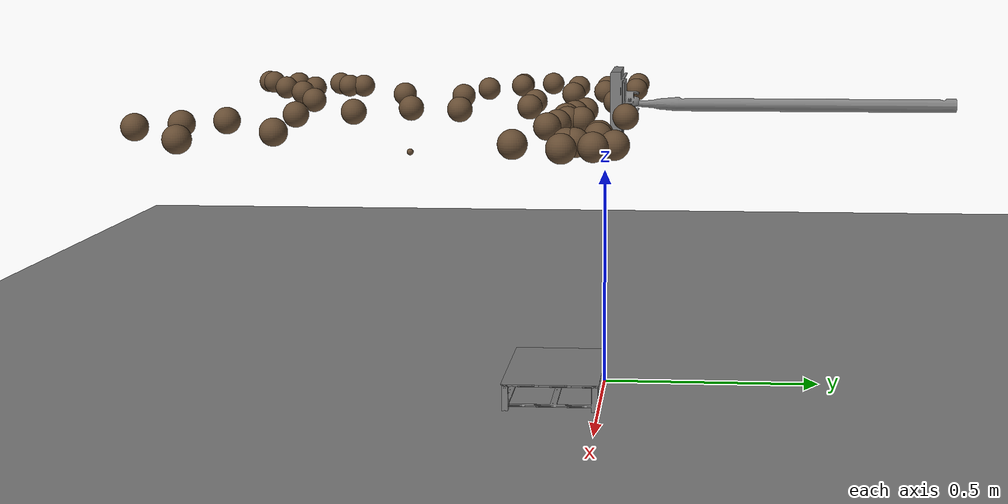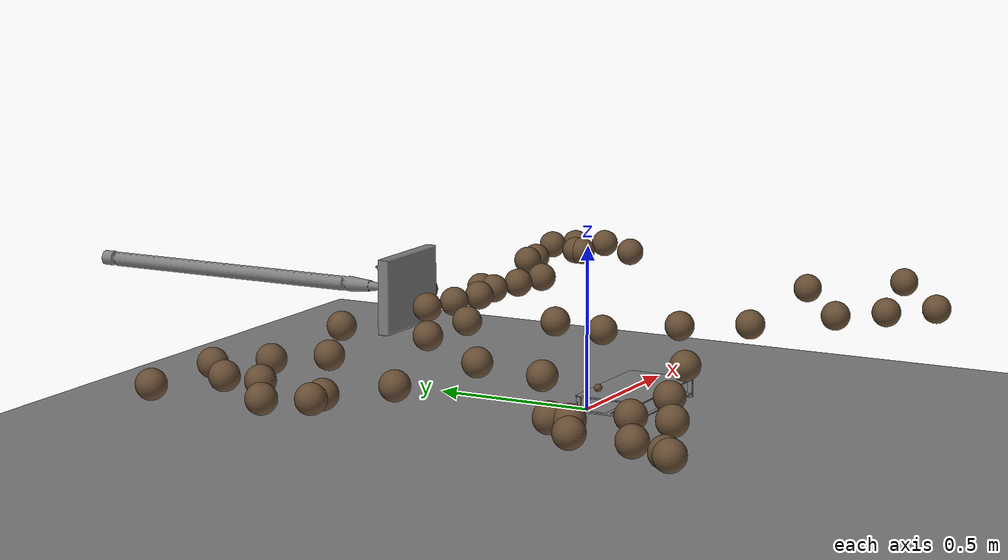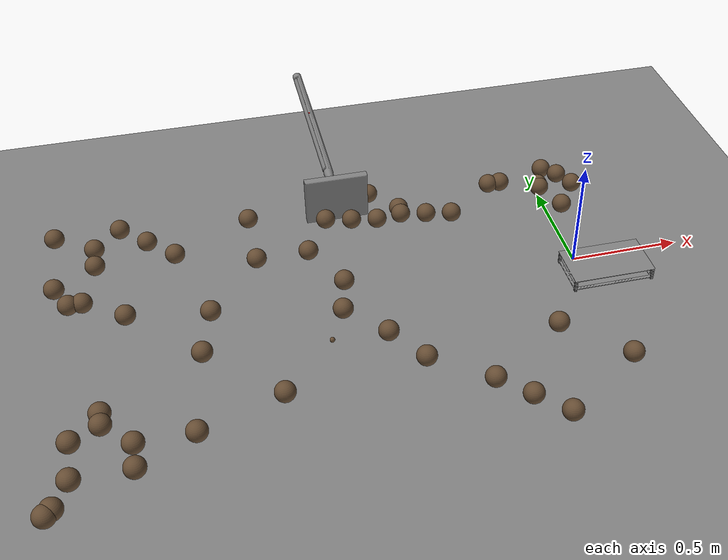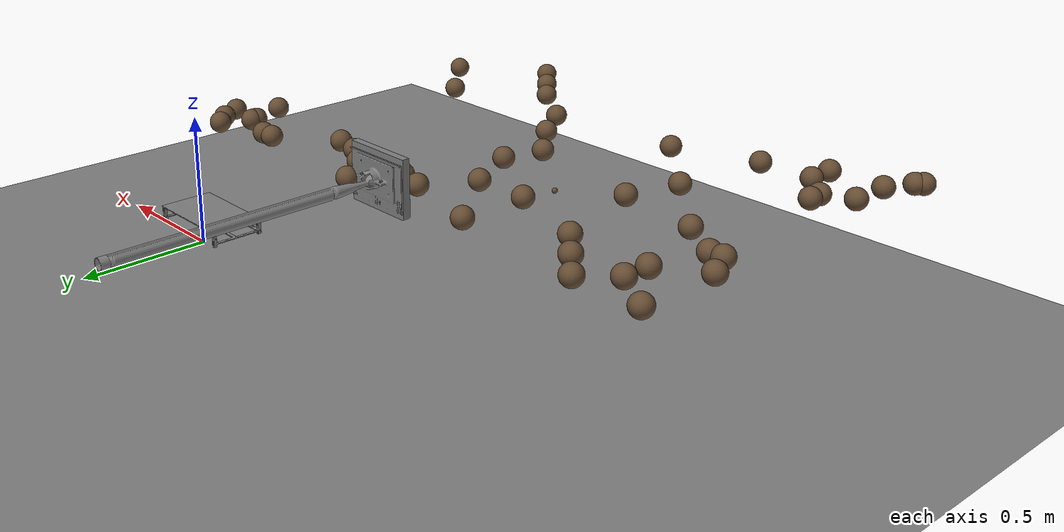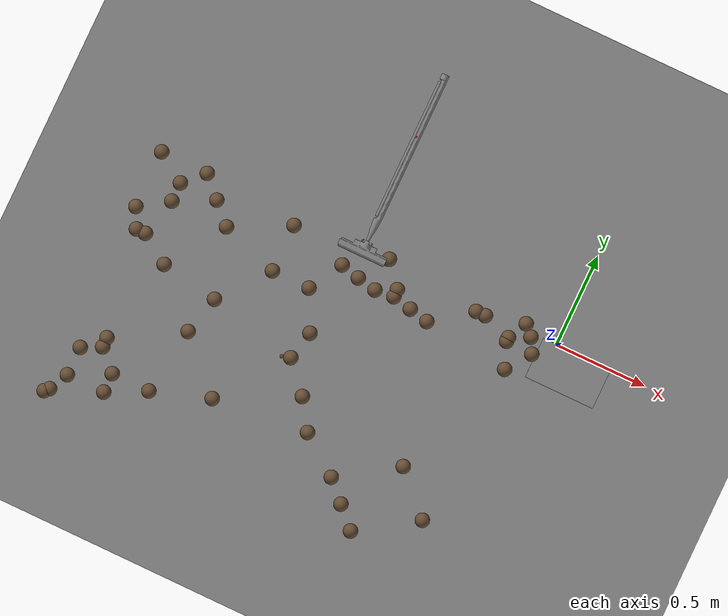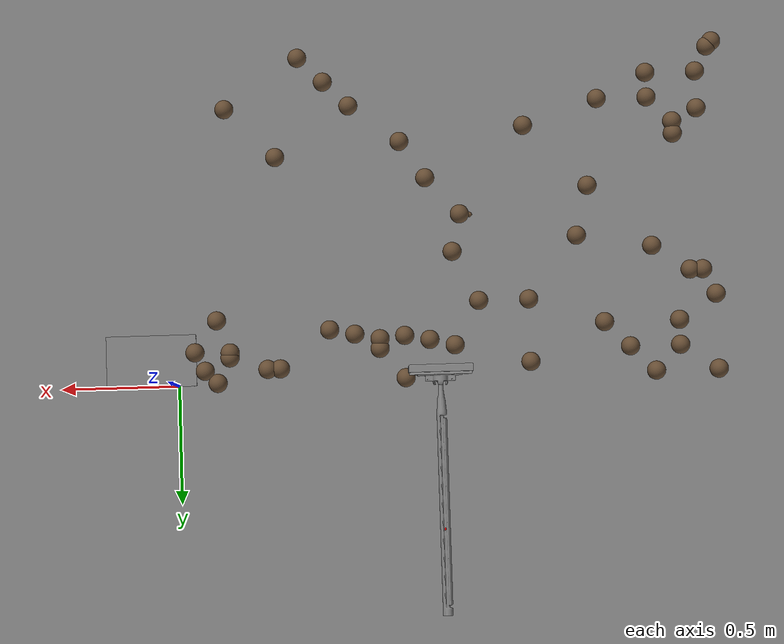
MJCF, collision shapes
<?xml version="1.0" encoding="UTF-8"?>
<mujoco model="ur5e_with_mop_and_dust">
  <compiler angle="radian" meshdir="assets" autolimits="true"/>
  <option integrator="implicitfast" timestep="0.01" viscosity="0.01"/>

  <!-- ================= DEFAULT SETTINGS ================= -->
  <default>
    <default class="ur5e">
      <default class="visual">
        <geom type="mesh" contype="0" conaffinity="0" group="2"/>
      </default>
      <default class="collision">
        <geom type="capsule" group="3"/>
        <default class="eef_collision">
          <geom type="cylinder"/>
        </default>
      </default>

      <joint axis="0 1 0" range="-6.28319 6.28319"/>
      <default class="joint_limited">
        <joint range="-3.1415 3.1415"/>
      </default>
      <default class="position">
        <position ctrlrange="-6.2831 6.2831" kp="2000" kv="100" forcerange="-150 150"/>
        <default class="position_limited">
          <position ctrlrange="-3.1415 3.1415"/>
        </default>
        <default class="position_small">
          <position kp="500" kv="25" forcerange="-28 28"/>
        </default>
      </default>
    </default>
    <default class="dust">
      <geom type="sphere" size="0.01" density="800" friction="1.5 0.05 0.01" condim="3"
            solref="0.01 0.8" solimp="0.9 0.95 0.001"/>
    </default>
  </default>

  <!-- ================= MATERIALS + MESHES ================= -->
  <asset>
    <material name="black" rgba="0.033 0.033 0.033 1"/>
    <material name="jointgray" rgba="0.278 0.278 0.278 1"/>
    <material name="linkgray" rgba="0.82 0.82 0.82 1"/>
    <material name="urblue" rgba="0.49 0.678 0.8 1"/>
    <material name="table_material" rgba="0.6 0.4 0.2 1"/>
    <material name="dust_material" rgba="0.4 0.3 0.2 1"/>

    <mesh file="base_0.obj"/>
    <mesh file="base_1.obj"/>
    <mesh file="shoulder_0.obj"/>
    <mesh file="shoulder_1.obj"/>
    <mesh file="shoulder_2.obj"/>
    <mesh file="upperarm_0.obj"/>
    <mesh file="upperarm_1.obj"/>
    <mesh file="upperarm_2.obj"/>
    <mesh file="upperarm_3.obj"/>
    <mesh file="forearm_0.obj"/>
    <mesh file="forearm_1.obj"/>
    <mesh file="forearm_2.obj"/>
    <mesh file="forearm_3.obj"/>
    <mesh file="wrist1_0.obj"/>
    <mesh file="wrist1_1.obj"/>
    <mesh file="wrist1_2.obj"/>
    <mesh file="wrist2_0.obj"/>
    <mesh file="wrist2_1.obj"/>
    <mesh file="wrist2_2.obj"/>
    <mesh file="wrist3.obj"/>

    <mesh file="test.stl" scale="0.28 0.29 0.1" name="table"/>
    <mesh name="base_mesh" file="mop_base.obj" scale="0.002 0.002 0.002"/>
    <mesh name="handle_mesh" file="mop_handle.obj" scale="0.002 0.002 0.002"/>
    <mesh name="dust_ball_mesh" file="simple_small_ball.stl" scale="0.005 0.005 0.005"/>
  </asset>

  <!-- ================= WORLD OBJECTS ================= -->
  <worldbody>
    <geom name="ground" type="plane" size="3 3 0.1" rgba="0.5 0.5 0.5 1" pos="0 0 0"
          solref="0.02 1.0" solimp="0.9 0.95 0.001"/>

    <body name="table" pos="0.3 0 0">
      <inertial mass="50" pos="0 0 0.4" diaginertia="10 10 5"/>
      <geom name="table_visual" type="mesh" mesh="table" material="table_material" class="visual"/>
      <geom name="table_collision" type="mesh" mesh="table" group="3" class="collision"
            solref="0.02 1.0" solimp="0.9 0.95 0.001"/>
    </body>

    <body name="base" pos="-0.875 -0.2 0.5" quat="1 0 0 1" childclass="ur5e">
      <inertial mass="4" pos="0 0 0" diaginertia="0.0044 0.0044 0.0072"/>
      <geom mesh="base_0" material="black" class="visual"/>
      <geom mesh="base_1" material="jointgray" class="visual"/>

      <body name="shoulder_link" pos="0 0 0.163">
        <inertial mass="3.7" pos="0 0 0" diaginertia="0.0102 0.0102 0.0066"/>
        <joint name="shoulder_pan" axis="0 0 1"/>
        <geom mesh="shoulder_0" material="urblue" class="visual"/>
        <geom mesh="shoulder_1" material="black" class="visual"/>
        <geom mesh="shoulder_2" material="jointgray" class="visual"/>

        <body name="upper_arm_link" pos="0 0.138 0" quat="1 0 1 0">
          <inertial mass="8.39" pos="0 0 0.2125" diaginertia="0.133 0.133 0.015"/>
          <joint name="shoulder_lift"/>
          <geom mesh="upperarm_0" material="linkgray" class="visual"/>
          <geom mesh="upperarm_1" material="black" class="visual"/>
          <geom mesh="upperarm_2" material="jointgray" class="visual"/>
          <geom mesh="upperarm_3" material="urblue" class="visual"/>

          <body name="forearm_link" pos="0 -0.131 0.425">
            <inertial mass="2.27" pos="0 0 0.196" diaginertia="0.031 0.031 0.004"/>
            <joint name="elbow" class="joint_limited"/>
            <geom mesh="forearm_0" material="urblue" class="visual"/>
            <geom mesh="forearm_1" material="linkgray" class="visual"/>
            <geom mesh="forearm_2" material="black" class="visual"/>
            <geom mesh="forearm_3" material="jointgray" class="visual"/>

            <body name="wrist_1_link" pos="0 0 0.392" quat="1 0 1 0">
              <inertial mass="1.219" pos="0 0.127 0" diaginertia="0.0025 0.0025 0.0021"/>
              <joint name="wrist_1"/>
              <geom mesh="wrist1_0" material="black" class="visual"/>
              <geom mesh="wrist1_1" material="urblue" class="visual"/>
              <geom mesh="wrist1_2" material="jointgray" class="visual"/>

              <body name="wrist_2_link" pos="0 0.127 0">
                <inertial mass="1.219" pos="0 0 0.1" diaginertia="0.0025 0.0025 0.0021"/>
                <joint name="wrist_2" axis="0 0 1"/>
                <geom mesh="wrist2_0" material="black" class="visual"/>
                <geom mesh="wrist2_1" material="urblue" class="visual"/>
                <geom mesh="wrist2_2" material="jointgray" class="visual"/>

                <body name="wrist_3_link" pos="0 0 0.1">
                  <inertial mass="0.188" pos="0 0.077 0" diaginertia="0.00013 0.0001 0.0001"/>
                  <joint name="wrist_3"/>
                  <geom mesh="wrist3" material="linkgray" class="visual"/>
                  <site name="ee_site" pos="0 0.08 0" size="0.01" rgba="1 0 0 1"/>

                  <body name="mop_mount" pos="0 0.08 0" quat="1 0 0 1">
                    <body name="mop_tool" pos="0 -0.6 0">
                      <inertial mass="0.5" pos="0 0 0" diaginertia="0.01 0.01 0.01"/>
                      <geom type="mesh" mesh="handle_mesh" density="500" friction="0.8 0.1 0.1"/>
                      <body name="mop_head">
                        <joint name="mop_socket" type="ball" damping="0.5" limited="false"/>
                        <inertial mass="0.2" pos="0 -0.05 -0.1" diaginertia="0.005 0.005 0.005"/>
                        <geom type="mesh" mesh="base_mesh" density="500" friction="0.8 0.1 0.1" pos="0 -0.05 -0.1"/>
                      </body>
                    </body>
                  </body>
                </body>
              </body>
            </body>
          </body>
        </body>
      </body>
    </body>

    <!-- Dust balls (stable with solver parameters) -->
    <body name="dust_1" pos="-1.2340 -0.6502 0.4">
      <freejoint/>
      <inertial mass="0.5" diaginertia="5e-5 5e-5 5e-5" pos="0 0 0"/>
      <geom name="d1" class="dust" material="dust_material"/>
    </body>
      <!-- Dust particles - stable until mop pushes them -->
    <body name="dust_111" pos="-1.2340 -0.6502 0.5">
      <freejoint/>
      <inertial mass="0.03" diaginertia="2e-5 2e-5 2e-5" pos="0 0 0"/>
      <geom name="d111" type="mesh" mesh="dust_ball_mesh" material="dust_material" class="dust"/>
    </body>

    <body name="dust_2" pos="-0.5004 -0.0503 0.5">
      <freejoint/>
      <inertial mass="0.03" diaginertia="2e-5 2e-5 2e-5" pos="0 0 0"/>
      <geom name="d2" type="mesh" mesh="dust_ball_mesh" material="dust_material" class="dust"/>
    </body>

    <body name="dust_3" pos="-2.1001 -1.0000 0.5">
      <freejoint/>
      <inertial mass="0.03" diaginertia="2e-5 2e-5 2e-5" pos="0 0 0"/>
      <geom name="d3" type="mesh" mesh="dust_ball_mesh" material="dust_material" class="dust"/>
    </body>

    <body name="dust_4" pos="-0.3000 -0.1000 0.5">
      <freejoint/>
      <inertial mass="0.03" diaginertia="2e-5 2e-5 2e-5" pos="0 0 0"/>
      <geom name="d4" type="mesh" mesh="dust_ball_mesh" material="dust_material" class="dust"/>
    </body>

    <body name="dust_5" pos="-1.8000 -0.2000 0.5">
      <freejoint/>
      <inertial mass="0.03" diaginertia="2e-5 2e-5 2e-5" pos="0 0 0"/>
      <geom name="d5" type="mesh" mesh="dust_ball_mesh" material="dust_material" class="dust"/>
    </body>

    <body name="dust_6" pos="-2.0000 -0.5000 0.5">
      <freejoint/>
      <inertial mass="0.03" diaginertia="2e-5 2e-5 2e-5" pos="0 0 0"/>
      <geom name="d6" type="mesh" mesh="dust_ball_mesh" material="dust_material" class="dust"/>
    </body>

    <body name="dust_7" pos="-0.7000 -1.2000 0.5">
      <freejoint/>
      <inertial mass="0.03" diaginertia="2e-5 2e-5 2e-5" pos="0 0 0"/>
      <geom name="d7" type="mesh" mesh="dust_ball_mesh" material="dust_material" class="dust"/>
    </body>

    <body name="dust_8" pos="-1.5000 -0.0500 0.5">
      <freejoint/>
      <inertial mass="0.03" diaginertia="2e-5 2e-5 2e-5" pos="0 0 0"/>
      <geom name="d8" type="mesh" mesh="dust_ball_mesh" material="dust_material" class="dust"/>
    </body>

    <body name="dust_9" pos="-2.2500 -0.3000 0.5">
      <freejoint/>
      <inertial mass="0.03" diaginertia="2e-5 2e-5 2e-5" pos="0 0 0"/>
      <geom name="d9" type="mesh" mesh="dust_ball_mesh" material="dust_material" class="dust"/>
    </body>

    <body name="dust_10" pos="-0.9000 -0.1200 0.5">
      <freejoint/>
      <inertial mass="0.03" diaginertia="2e-5 2e-5 2e-5" pos="0 0 0"/>
      <geom name="d10" type="mesh" mesh="dust_ball_mesh" material="dust_material" class="dust"/>
    </body>

    <body name="dust_11" pos="-1.0000 0.0000 0.5">
      <freejoint/>
      <inertial mass="0.03" diaginertia="2e-5 2e-5 2e-5" pos="0 0 0"/>
      <geom name="d11" type="mesh" mesh="dust_ball_mesh" material="dust_material" class="dust"/>
    </body>

    <body name="dust_12" pos="-2.2000 -1.0500 0.5">
      <freejoint/>
      <inertial mass="0.03" diaginertia="2e-5 2e-5 2e-5" pos="0 0 0"/>
      <geom name="d12" type="mesh" mesh="dust_ball_mesh" material="dust_material" class="dust"/>
    </body>

    <body name="dust_13" pos="-1.7500 -0.7500 0.5">
      <freejoint/>
      <inertial mass="0.03" diaginertia="2e-5 2e-5 2e-5" pos="0 0 0"/>
      <geom name="d13" type="mesh" mesh="dust_ball_mesh" material="dust_material" class="dust"/>
    </body>

    <body name="dust_14" pos="-0.2500 -0.2500 0.5">
      <freejoint/>
      <inertial mass="0.03" diaginertia="2e-5 2e-5 2e-5" pos="0 0 0"/>
      <geom name="d14" type="mesh" mesh="dust_ball_mesh" material="dust_material" class="dust"/>
    </body>

    <body name="dust_15" pos="-1.1000 -0.1500 0.5">
      <freejoint/>
      <inertial mass="0.03" diaginertia="2e-5 2e-5 2e-5" pos="0 0 0"/>
      <geom name="d15" type="mesh" mesh="dust_ball_mesh" material="dust_material" class="dust"/>
    </body>

    <body name="dust_16" pos="-2.2700 -1.3200 0.5">
      <freejoint/>
      <inertial mass="0.03" diaginertia="2e-5 2e-5 2e-5" pos="0 0 0"/>
      <geom name="d16" type="mesh" mesh="dust_ball_mesh" material="dust_material" class="dust"/>
    </body>

    <body name="dust_17" pos="-0.1608 -0.1246 0.5">
      <freejoint/>
      <inertial mass="0.03" diaginertia="2e-5 2e-5 2e-5" pos="0 0 0"/>
      <geom name="d17" type="mesh" mesh="dust_ball_mesh" material="dust_material" class="dust"/>
    </body>

    <body name="dust_18" pos="-1.5000 -1.0000 0.5">
      <freejoint/>
      <inertial mass="0.03" diaginertia="2e-5 2e-5 2e-5" pos="0 0 0"/>
      <geom name="d18" type="mesh" mesh="dust_ball_mesh" material="dust_material" class="dust"/>
    </body>

    <body name="dust_19" pos="-0.7008 -0.2003 0.5">
      <freejoint/>
      <inertial mass="0.03" diaginertia="2e-5 2e-5 2e-5" pos="0 0 0"/>
      <geom name="d19" type="mesh" mesh="dust_ball_mesh" material="dust_material" class="dust"/>
    </body>

    <body name="dust_20" pos="-2.1008 -0.9502 0.5">
      <freejoint/>
      <inertial mass="0.03" diaginertia="2e-5 2e-5 2e-5" pos="0 0 0"/>
      <geom name="d20" type="mesh" mesh="dust_ball_mesh" material="dust_material" class="dust"/>
    </body>

    <body name="dust_21" pos="-1.2000 -0.5000 0.5">
      <freejoint/>
      <inertial mass="0.03" diaginertia="2e-5 2e-5 2e-5" pos="0 0 0"/>
      <geom name="d21" type="mesh" mesh="dust_ball_mesh" material="dust_material" class="dust"/>
    </body>

    <body name="dust_22" pos="-0.4500 -0.0500 0.5">
      <freejoint/>
      <inertial mass="0.03" diaginertia="2e-5 2e-5 2e-5" pos="0 0 0"/>
      <geom name="d22" type="mesh" mesh="dust_ball_mesh" material="dust_material" class="dust"/>
    </body>

    <body name="dust_23" pos="-2.0000 -1.2000 0.5">
      <freejoint/>
      <inertial mass="0.03" diaginertia="2e-5 2e-5 2e-5" pos="0 0 0"/>
      <geom name="d23" type="mesh" mesh="dust_ball_mesh" material="dust_material" class="dust"/>
    </body>

    <body name="dust_24" pos="-0.3008 -0.1200 0.5">
      <freejoint/>
      <inertial mass="0.03" diaginertia="2e-5 2e-5 2e-5" pos="0 0 0"/>
      <geom name="d24" type="mesh" mesh="dust_ball_mesh" material="dust_material" class="dust"/>
    </body>

    <body name="dust_25" pos="-1.9000 -0.1000 0.5">
      <freejoint/>
      <inertial mass="0.03" diaginertia="2e-5 2e-5 2e-5" pos="0 0 0"/>
      <geom name="d25" type="mesh" mesh="dust_ball_mesh" material="dust_material" class="dust"/>
    </body>

    <body name="dust_26" pos="-2.2500 0.0000 0.5">
      <freejoint/>
      <inertial mass="0.03" diaginertia="2e-5 2e-5 2e-5" pos="0 0 0"/>
      <geom name="d26" type="mesh" mesh="dust_ball_mesh" material="dust_material" class="dust"/>
    </body>

    <body name="dust_27" pos="-0.8000 -1.1000 0.5">
      <freejoint/>
      <inertial mass="0.03" diaginertia="2e-5 2e-5 2e-5" pos="0 0 0"/>
      <geom name="d27" type="mesh" mesh="dust_ball_mesh" material="dust_material" class="dust"/>
    </body>

    <body name="dust_28" pos="-1.3000 -0.3000 0.5">
      <freejoint/>
      <inertial mass="0.03" diaginertia="2e-5 2e-5 2e-5" pos="0 0 0"/>
      <geom name="d28" type="mesh" mesh="dust_ball_mesh" material="dust_material" class="dust"/>
    </body>

    <body name="dust_29" pos="-2.1500 -0.4000 0.5">
      <freejoint/>
      <inertial mass="0.03" diaginertia="2e-5 2e-5 2e-5" pos="0 0 0"/>
      <geom name="d29" type="mesh" mesh="dust_ball_mesh" material="dust_material" class="dust"/>
    </body>

    <body name="dust_30" pos="-1.0000 -0.1690 0.5">
      <freejoint/>
      <inertial mass="0.03" diaginertia="2e-5 2e-5 2e-5" pos="0 0 0"/>
      <geom name="d30" type="mesh" mesh="dust_ball_mesh" material="dust_material" class="dust"/>
    </body>

    <body name="dust_31" pos="-1.1000 -0.8000 0.5">
      <freejoint/>
      <inertial mass="0.03" diaginertia="2e-5 2e-5 2e-5" pos="0 0 0"/>
      <geom name="d31" type="mesh" mesh="dust_ball_mesh" material="dust_material" class="dust"/>
    </body>

    <body name="dust_32" pos="-2.0008 -1.1000 0.5">
      <freejoint/>
      <inertial mass="0.03" diaginertia="2e-5 2e-5 2e-5" pos="0 0 0"/>
      <geom name="d32" type="mesh" mesh="dust_ball_mesh" material="dust_material" class="dust"/>
    </body>

    <body name="dust_33" pos="-0.2000 -0.0500 0.5">
      <freejoint/>
      <inertial mass="0.03" diaginertia="2e-5 2e-5 2e-5" pos="0 0 0"/>
      <geom name="d33" type="mesh" mesh="dust_ball_mesh" material="dust_material" class="dust"/>
    </body>

    <body name="dust_34" pos="-1.7000 -0.5500 0.5">
      <freejoint/>
      <inertial mass="0.03" diaginertia="2e-5 2e-5 2e-5" pos="0 0 0"/>
      <geom name="d34" type="mesh" mesh="dust_ball_mesh" material="dust_material" class="dust"/>
    </body>

    <body name="dust_35" pos="-2.1000 -0.2000 0.5">
      <freejoint/>
      <inertial mass="0.03" diaginertia="2e-5 2e-5 2e-5" pos="0 0 0"/>
      <geom name="d35" type="mesh" mesh="dust_ball_mesh" material="dust_material" class="dust"/>
    </body>

    <body name="dust_36" pos="-0.6000 -1.3000 0.5">
      <freejoint/>
      <inertial mass="0.03" diaginertia="2e-5 2e-5 2e-5" pos="0 0 0"/>
      <geom name="d36" type="mesh" mesh="dust_ball_mesh" material="dust_material" class="dust"/>
    </body>

    <body name="dust_37" pos="-2.2000 -1.2000 0.5">
      <freejoint/>
      <inertial mass="0.03" diaginertia="2e-5 2e-5 2e-5" pos="0 0 0"/>
      <geom name="d37" type="mesh" mesh="dust_ball_mesh" material="dust_material" class="dust"/>
    </body>

    <body name="dust_38" pos="-2.1000 -0.1000 0.5">
      <freejoint/>
      <inertial mass="0.03" diaginertia="2e-5 2e-5 2e-5" pos="0 0 0"/>
      <geom name="d38" type="mesh" mesh="dust_ball_mesh" material="dust_material" class="dust"/>
    </body>

    <body name="dust_39" pos="-1.5000 -0.3000 0.5">
      <freejoint/>
      <inertial mass="0.03" diaginertia="2e-5 2e-5 2e-5" pos="0 0 0"/>
      <geom name="d39" type="mesh" mesh="dust_ball_mesh" material="dust_material" class="dust"/>
    </body>

    <body name="dust_40" pos="-0.9008 -0.1590 0.5">
      <freejoint/>
      <inertial mass="0.03" diaginertia="2e-5 2e-5 2e-5" pos="0 0 0"/>
      <geom name="d40" type="mesh" mesh="dust_ball_mesh" material="dust_material" class="dust"/>
    </body>

    <body name="dust_41" pos="-2.2500 -1.3000 0.5">
      <freejoint/>
      <inertial mass="0.03" diaginertia="2e-5 2e-5 2e-5" pos="0 0 0"/>
      <geom name="d41" type="mesh" mesh="dust_ball_mesh" material="dust_material" class="dust"/>
    </body>

    <body name="dust_42" pos="-1.0008 -0.9500 0.5">
      <freejoint/>
      <inertial mass="0.03" diaginertia="2e-5 2e-5 2e-5" pos="0 0 0"/>
      <geom name="d42" type="mesh" mesh="dust_ball_mesh" material="dust_material" class="dust"/>
    </body>

    <body name="dust_43" pos="-0.3008 -1.1000 0.5">
      <freejoint/>
      <inertial mass="0.03" diaginertia="2e-5 2e-5 2e-5" pos="0 0 0"/>
      <geom name="d43" type="mesh" mesh="dust_ball_mesh" material="dust_material" class="dust"/>
    </body>

    <body name="dust_44" pos="-2.0000 0.0000 0.5">
      <freejoint/>
      <inertial mass="0.03" diaginertia="2e-5 2e-5 2e-5" pos="0 0 0"/>
      <geom name="d44" type="mesh" mesh="dust_ball_mesh" material="dust_material" class="dust"/>
    </body>

    <body name="dust_45" pos="-1.2000 -0.1255 0.5">
      <freejoint/>
      <inertial mass="0.03" diaginertia="2e-5 2e-5 2e-5" pos="0 0 0"/>
      <geom name="d45" type="mesh" mesh="dust_ball_mesh" material="dust_material" class="dust"/>
    </body>

    <body name="dust_46" pos="-0.5000 -0.9000 0.5">
      <freejoint/>
      <inertial mass="0.03" diaginertia="2e-5 2e-5 2e-5" pos="0 0 0"/>
      <geom name="d46" type="mesh" mesh="dust_ball_mesh" material="dust_material" class="dust"/>
    </body>

    <body name="dust_47" pos="-2.2000 -0.4000 0.5">
      <freejoint/>
      <inertial mass="0.03" diaginertia="2e-5 2e-5 2e-5" pos="0 0 0"/>
      <geom name="d47" type="mesh" mesh="dust_ball_mesh" material="dust_material" class="dust"/>
    </body>

    <body name="dust_48" pos="-0.8008 -0.1800 0.5">
      <freejoint/>
      <inertial mass="0.03" diaginertia="2e-5 2e-5 2e-5" pos="0 0 0"/>
      <geom name="d48" type="mesh" mesh="dust_ball_mesh" material="dust_material" class="dust"/>
    </body>

    <body name="dust_49" pos="-1.8000 -1.1000 0.5">
      <freejoint/>
      <inertial mass="0.03" diaginertia="2e-5 2e-5 2e-5" pos="0 0 0"/>
      <geom name="d49" type="mesh" mesh="dust_ball_mesh" material="dust_material" class="dust"/>
    </body>

    <body name="dust_50" pos="-0.2500 0.0000 0.5">
      <freejoint/>
      <inertial mass="0.03" diaginertia="2e-5 2e-5 2e-5" pos="0 0 0"/>
      <geom name="d50" type="mesh" mesh="dust_ball_mesh" material="dust_material" class="dust"/>
    </body>

  </worldbody>

  <!-- ================= ACTUATORS ================= -->
  <actuator>
    <position class="position" name="shoulder_pan_act" joint="shoulder_pan"/>
    <position class="position" name="shoulder_lift_act" joint="shoulder_lift"/>
    <position class="position_limited" name="elbow_act" joint="elbow"/>
    <position class="position_small" name="wrist_1_act" joint="wrist_1"/>
    <position class="position_small" name="wrist_2_act" joint="wrist_2"/>
    <position class="position_small" name="wrist_3_act" joint="wrist_3"/>
  </actuator>
</mujoco>
